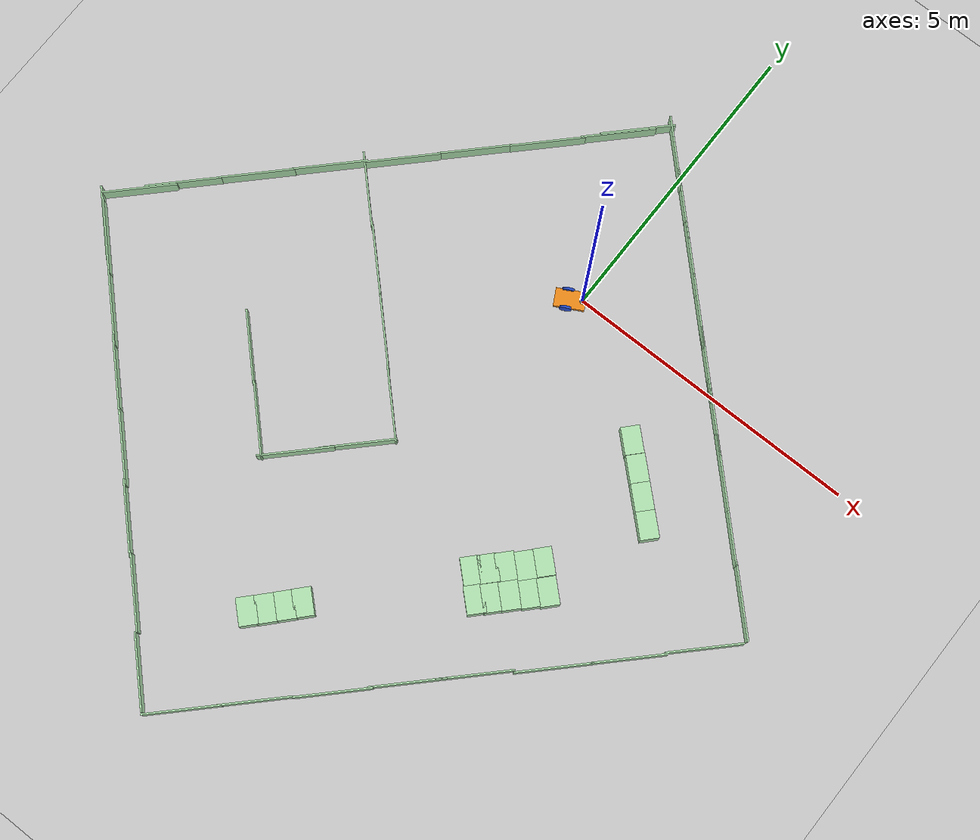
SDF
<sdf version="1.6">
 <world name="default">
  <scene><ambient>0.5 0.5 0.5 1</ambient><background>0.5 0.5 0.5 1</background><shadows>0</shadows></scene>
  <physics name="default_physics" default="0" type="ode">
   <ode>
    <solver>
     <type>quick</type>
     <iters>10</iters>
     <sor>1.3</sor>
     <use_dynamic_moi_rescaling>0</use_dynamic_moi_rescaling>
    </solver>
    <constraints>
     <cfm>0</cfm>
     <erp>0.2</erp>
     <contact_max_correcting_vel>100</contact_max_correcting_vel>
     <contact_surface_layer>0.001</contact_surface_layer>
    </constraints>
   </ode>
   <real_time_update_rate>1000</real_time_update_rate>
   <max_step_size>0.001</max_step_size>
   <real_time_factor>1</real_time_factor>
  </physics>
  <light name="directional_light_1" type="directional">
   <cast_shadows>0</cast_shadows>
   <pose>0 0 30 0.1 0.1 0</pose>
   <diffuse>1 1 1 1</diffuse>
   <specular>0.1 0.1 0.1 1</specular>
   <attenuation><range>300</range></attenuation>
   <direction>0.1 0.1 -1</direction>
  </light>
  <model name="ground_plane">
   <static>1</static>
   <link name="link">
    <collision name="collision">
     <geometry><plane><normal>0 0 1</normal><size>100 100</size></plane></geometry>
     <surface><friction><ode><mu>100</mu><mu2>50</mu2></ode></friction></surface>
    </collision>
    <visual name="visual">
     <cast_shadows>0</cast_shadows>
     <geometry><plane><normal>0 0 1</normal><size>100 100</size></plane></geometry>
     <material>
      <script><uri>file://media/materials/scripts/gazebo.material</uri><name>Gazebo/Grey</name></script>
     </material>
    </visual>
   </link>
  </model>
  <model name="wall_1">
   <static>1</static>
   <link name="wall_1_link">
    <pose>-3.78491 -0.73691 0.15 0 -0 0.785398</pose>
    <collision name="wall_1_collision"><geometry><box><size>0.0254 1.2192 0.3</size></box></geometry></collision>
    <visual name="wall_1_visual">
     <geometry><box><size>0.0254 1.2192 0.3</size></box></geometry>
     <material>
      <ambient>0.7 0.9 0.7 1</ambient>
      <diffuse>0.7 0.9 0.7 1</diffuse>
      <specular>0.1 0.1 0.1 1</specular>
      <emissive>0 0 0 0</emissive>
     </material>
    </visual>
   </link>
  </model>
  <model name="wall_2">
   <pose>-0.080569 0.101811 0 0 -0 0</pose>
   <static>1</static>
   <link name="wall_2_link">
    <pose>-2.87051 -1.65131 0.15 0 -0 0.785398</pose>
    <collision name="wall_2_collision"><geometry><box><size>0.0254 1.2192 0.3</size></box></geometry></collision>
    <visual name="wall_2_visual">
     <geometry><box><size>0.0254 1.2192 0.3</size></box></geometry>
     <material>
      <ambient>0.7 0.9 0.7 1</ambient>
      <diffuse>0.7 0.9 0.7 1</diffuse>
      <specular>0.1 0.1 0.1 1</specular>
      <emissive>0 0 0 0</emissive>
     </material>
    </visual>
   </link>
  </model>
  <model name="wall_3">
   <pose>-4.43995 -1.50936 0 0 -0 0</pose>
   <static>1</static>
   <link name="wall_3_link">
    <pose>-2.26091 -2.26091 0.15 0 -0 0.785398</pose>
    <collision name="wall_3_collision"><geometry><box><size>0.0254 1.2192 0.3</size></box></geometry></collision>
    <visual name="wall_3_visual">
     <geometry><box><size>0.0254 1.2192 0.3</size></box></geometry>
     <material>
      <ambient>0.7 0.9 0.7 1</ambient>
      <diffuse>0.7 0.9 0.7 1</diffuse>
      <specular>0.1 0.1 0.1 1</specular>
      <emissive>0 0 0 0</emissive>
     </material>
    </visual>
   </link>
  </model>
  <model name="wall_4">
   <pose>6.46148 0.567905 0 0 -0 0</pose>
   <static>1</static>
   <link name="wall_4_link">
    <pose>-1.65131 -2.87051 0.15 0 -0 0.785398</pose>
    <collision name="wall_4_collision"><geometry><box><size>0.0254 1.2192 0.3</size></box></geometry></collision>
    <visual name="wall_4_visual">
     <geometry><box><size>0.0254 1.2192 0.3</size></box></geometry>
     <material>
      <ambient>0.7 0.9 0.7 1</ambient>
      <diffuse>0.7 0.9 0.7 1</diffuse>
      <specular>0.1 0.1 0.1 1</specular>
      <emissive>0 0 0 0</emissive>
     </material>
    </visual>
   </link>
  </model>
  <model name="wall_5">
   <pose>-2.81035 2.98922 0 0 -0 0</pose>
   <static>1</static>
   <link name="wall_5_link">
    <pose>-1.6941 -3.7923 0.15 0 0 -0.785398</pose>
    <collision name="wall_5_collision"><geometry><box><size>0.0254 1.2192 0.3</size></box></geometry></collision>
    <visual name="wall_5_visual">
     <geometry><box><size>0.0254 1.2192 0.3</size></box></geometry>
     <material>
      <ambient>0.7 0.9 0.7 1</ambient>
      <diffuse>0.7 0.9 0.7 1</diffuse>
      <specular>0.1 0.1 0.1 1</specular>
      <emissive>0 0 0 0</emissive>
     </material>
    </visual>
   </link>
  </model>
  <model name="wall_6">
   <pose>1.22215 0.957461 0 0 -0 0</pose>
   <static>1</static>
   <link name="wall_6_link">
    <pose>-1.524 1.8288 0.15 0 -0 0.785398</pose>
    <collision name="wall_6_collision"><geometry><box><size>0.0254 1.2192 0.3</size></box></geometry></collision>
    <visual name="wall_6_visual">
     <geometry><box><size>0.0254 1.2192 0.3</size></box></geometry>
     <material>
      <ambient>0.7 0.9 0.7 1</ambient>
      <diffuse>0.7 0.9 0.7 1</diffuse>
      <specular>0.1 0.1 0.1 1</specular>
      <emissive>0 0 0 0</emissive>
     </material>
    </visual>
   </link>
  </model>
  <model name="wall_7">
   <static>1</static>
   <link name="wall_7_link">
    <pose>0.332269 2.16107 0.15 0 -0 0.785398</pose>
    <collision name="wall_7_collision"><geometry><box><size>0.0254 1.2192 0.3</size></box></geometry></collision>
    <visual name="wall_7_visual">
     <geometry><box><size>0.0254 1.2192 0.3</size></box></geometry>
     <material>
      <ambient>0.7 0.9 0.7 1</ambient>
      <diffuse>0.7 0.9 0.7 1</diffuse>
      <specular>0.1 0.1 0.1 1</specular>
      <emissive>0 0 0 0</emissive>
     </material>
    </visual>
   </link>
  </model>
  <model name="wall_8">
   <static>1</static>
   <link name="wall_8_link">
    <pose>0.941869 1.55147 0.15 0 -0 0.785398</pose>
    <collision name="wall_8_collision"><geometry><box><size>0.0254 1.2192 0.3</size></box></geometry></collision>
    <visual name="wall_8_visual">
     <geometry><box><size>0.0254 1.2192 0.3</size></box></geometry>
     <material>
      <ambient>0.7 0.9 0.7 1</ambient>
      <diffuse>0.7 0.9 0.7 1</diffuse>
      <specular>0.1 0.1 0.1 1</specular>
      <emissive>0 0 0 0</emissive>
     </material>
    </visual>
   </link>
  </model>
  <model name="wall_9">
   <static>1</static>
   <link name="wall_9_link">
    <pose>1.55147 0.941869 0.15 0 -0 0.785398</pose>
    <collision name="wall_9_collision"><geometry><box><size>0.0254 1.2192 0.3</size></box></geometry></collision>
    <visual name="wall_9_visual">
     <geometry><box><size>0.0254 1.2192 0.3</size></box></geometry>
     <material>
      <ambient>0.7 0.9 0.7 1</ambient>
      <diffuse>0.7 0.9 0.7 1</diffuse>
      <specular>0.1 0.1 0.1 1</specular>
      <emissive>0 0 0 0</emissive>
     </material>
    </visual>
   </link>
  </model>
  <model name="wall_10">
   <static>1</static>
   <link name="wall_10_link">
    <pose>2.16107 0.332269 0.15 0 -0 0.785398</pose>
    <collision name="wall_10_collision"><geometry><box><size>0.0254 1.2192 0.3</size></box></geometry></collision>
    <visual name="wall_10_visual">
     <geometry><box><size>0.0254 1.2192 0.3</size></box></geometry>
     <material>
      <ambient>0.7 0.9 0.7 1</ambient>
      <diffuse>0.7 0.9 0.7 1</diffuse>
      <specular>0.1 0.1 0.1 1</specular>
      <emissive>0 0 0 0</emissive>
     </material>
    </visual>
   </link>
  </model>
  <model name="wall_11">
   <static>1</static>
   <link name="wall_11_link">
    <pose>2.77067 -0.277331 0.15 0 -0 0.785398</pose>
    <collision name="wall_11_collision"><geometry><box><size>0.0254 1.2192 0.3</size></box></geometry></collision>
    <visual name="wall_11_visual">
     <geometry><box><size>0.0254 1.2192 0.3</size></box></geometry>
     <material>
      <ambient>0.7 0.9 0.7 1</ambient>
      <diffuse>0.7 0.9 0.7 1</diffuse>
      <specular>0.1 0.1 0.1 1</specular>
      <emissive>0 0 0 0</emissive>
     </material>
    </visual>
   </link>
  </model>
  <model name="wall_12">
   <static>1</static>
   <link name="wall_12_link">
    <pose>3.38027 -0.886931 0.15 0 -0 0.785398</pose>
    <collision name="wall_12_collision"><geometry><box><size>0.0254 1.2192 0.3</size></box></geometry></collision>
    <visual name="wall_12_visual">
     <geometry><box><size>0.0254 1.2192 0.3</size></box></geometry>
     <material>
      <ambient>0.7 0.9 0.7 1</ambient>
      <diffuse>0.7 0.9 0.7 1</diffuse>
      <specular>0.1 0.1 0.1 1</specular>
      <emissive>0 0 0 0</emissive>
     </material>
    </visual>
   </link>
  </model>
  <model name="wall_13">
   <static>1</static>
   <link name="wall_13_link">
    <pose>3.98987 -1.49653 0.15 0 -0 0.785398</pose>
    <collision name="wall_13_collision"><geometry><box><size>0.0254 1.2192 0.3</size></box></geometry></collision>
    <visual name="wall_13_visual">
     <geometry><box><size>0.0254 1.2192 0.3</size></box></geometry>
     <material>
      <ambient>0.7 0.9 0.7 1</ambient>
      <diffuse>0.7 0.9 0.7 1</diffuse>
      <specular>0.1 0.1 0.1 1</specular>
      <emissive>0 0 0 0</emissive>
     </material>
    </visual>
   </link>
  </model>
  <model name="wall_14">
   <pose>-0.518637 -3.04896 0 0 -0 0</pose>
   <static>1</static>
   <link name="wall_14_link">
    <pose>-0.312194 -5.78381 0.15 0 0 -0.785398</pose>
    <collision name="wall_14_collision"><geometry><box><size>0.0254 1.2192 0.3</size></box></geometry></collision>
    <visual name="wall_14_visual">
     <geometry><box><size>0.0254 1.2192 0.3</size></box></geometry>
     <material>
      <ambient>0.7 0.9 0.7 1</ambient>
      <diffuse>0.7 0.9 0.7 1</diffuse>
      <specular>0.1 0.1 0.1 1</specular>
      <emissive>0 0 0 0</emissive>
     </material>
    </visual>
   </link>
  </model>
  <model name="wall_15">
   <pose>-0.355367 -2.88213 0 0 -0 0</pose>
   <static>1</static>
   <link name="wall_15_link">
    <pose>0.297406 -5.17421 0.15 0 0 -0.785398</pose>
    <collision name="wall_15_collision"><geometry><box><size>0.0254 1.2192 0.3</size></box></geometry></collision>
    <visual name="wall_15_visual">
     <geometry><box><size>0.0254 1.2192 0.3</size></box></geometry>
     <material>
      <ambient>0.7 0.9 0.7 1</ambient>
      <diffuse>0.7 0.9 0.7 1</diffuse>
      <specular>0.1 0.1 0.1 1</specular>
      <emissive>0 0 0 0</emissive>
     </material>
    </visual>
   </link>
  </model>
  <model name="wall_16">
   <pose>-0.115581 -2.6575 0 0 -0 0</pose>
   <static>1</static>
   <link name="wall_16_link">
    <pose>0.907006 -4.56461 0.15 0 0 -0.785398</pose>
    <collision name="wall_16_collision"><geometry><box><size>0.0254 1.2192 0.3</size></box></geometry></collision>
    <visual name="wall_16_visual">
     <geometry><box><size>0.0254 1.2192 0.3</size></box></geometry>
     <material>
      <ambient>0.7 0.9 0.7 1</ambient>
      <diffuse>0.7 0.9 0.7 1</diffuse>
      <specular>0.1 0.1 0.1 1</specular>
      <emissive>0 0 0 0</emissive>
     </material>
    </visual>
   </link>
  </model>
  <model name="wall_17">
   <pose>0.063621 -2.45752 0 0 -0 0</pose>
   <static>1</static>
   <link name="wall_17_link">
    <pose>1.51661 -3.95501 0.15 0 0 -0.785398</pose>
    <collision name="wall_17_collision"><geometry><box><size>0.0254 1.2192 0.3</size></box></geometry></collision>
    <visual name="wall_17_visual">
     <geometry><box><size>0.0254 1.2192 0.3</size></box></geometry>
     <material>
      <ambient>0.7 0.9 0.7 1</ambient>
      <diffuse>0.7 0.9 0.7 1</diffuse>
      <specular>0.1 0.1 0.1 1</specular>
      <emissive>0 0 0 0</emissive>
     </material>
    </visual>
   </link>
  </model>
  <model name="wall_18">
   <pose>0.183133 -2.3371 0 0 -0 0</pose>
   <static>1</static>
   <link name="wall_18_link">
    <pose>2.12621 -3.34541 0.15 0 0 -0.785398</pose>
    <collision name="wall_18_collision"><geometry><box><size>0.0254 1.2192 0.3</size></box></geometry></collision>
    <visual name="wall_18_visual">
     <geometry><box><size>0.0254 1.2192 0.3</size></box></geometry>
     <material>
      <ambient>0.7 0.9 0.7 1</ambient>
      <diffuse>0.7 0.9 0.7 1</diffuse>
      <specular>0.1 0.1 0.1 1</specular>
      <emissive>0 0 0 0</emissive>
     </material>
    </visual>
   </link>
  </model>
  <model name="wall_19">
   <pose>0.437184 -2.13081 0 0 -0 0</pose>
   <static>1</static>
   <link name="wall_19_link">
    <pose>2.73581 -2.73581 0.15 0 0 -0.785398</pose>
    <collision name="wall_19_collision"><geometry><box><size>0.0254 1.2192 0.3</size></box></geometry></collision>
    <visual name="wall_19_visual">
     <geometry><box><size>0.0254 1.2192 0.3</size></box></geometry>
     <material>
      <ambient>0.7 0.9 0.7 1</ambient>
      <diffuse>0.7 0.9 0.7 1</diffuse>
      <specular>0.1 0.1 0.1 1</specular>
      <emissive>0 0 0 0</emissive>
     </material>
    </visual>
   </link>
  </model>
  <model name="wall_20">
   <pose>0.633815 -1.9284 0 0 -0 0</pose>
   <static>1</static>
   <link name="wall_20_link">
    <pose>3.34541 -2.12621 0.15 0 0 -0.785398</pose>
    <collision name="wall_20_collision"><geometry><box><size>0.0254 1.2192 0.3</size></box></geometry></collision>
    <visual name="wall_20_visual">
     <geometry><box><size>0.0254 1.2192 0.3</size></box></geometry>
     <material>
      <ambient>0.7 0.9 0.7 1</ambient>
      <diffuse>0.7 0.9 0.7 1</diffuse>
      <specular>0.1 0.1 0.1 1</specular>
      <emissive>0 0 0 0</emissive>
     </material>
    </visual>
   </link>
  </model>
  <model name="wall_21">
   <pose>0.834631 -1.69337 0 0 -0 0</pose>
   <static>1</static>
   <link name="wall_21_link">
    <pose>3.95501 -1.51661 0.15 0 0 -0.785398</pose>
    <collision name="wall_21_collision"><geometry><box><size>0.0254 1.2192 0.3</size></box></geometry></collision>
    <visual name="wall_21_visual">
     <geometry><box><size>0.0254 1.2192 0.3</size></box></geometry>
     <material>
      <ambient>0.7 0.9 0.7 1</ambient>
      <diffuse>0.7 0.9 0.7 1</diffuse>
      <specular>0.1 0.1 0.1 1</specular>
      <emissive>0 0 0 0</emissive>
     </material>
    </visual>
   </link>
  </model>
  <model name="wall_22">
   <pose>-0.714344 0.57655 0 0 -0 0</pose>
   <static>1</static>
   <link name="wall_22_link">
    <pose>-0.29582 2.14258 0.15 0 0 -0.785398</pose>
    <collision name="wall_22_collision"><geometry><box><size>0.0254 1.2192 0.3</size></box></geometry></collision>
    <visual name="wall_22_visual">
     <geometry><box><size>0.0254 1.2192 0.3</size></box></geometry>
     <material>
      <ambient>0.7 0.9 0.7 1</ambient>
      <diffuse>0.7 0.9 0.7 1</diffuse>
      <specular>0.1 0.1 0.1 1</specular>
      <emissive>0 0 0 0</emissive>
     </material>
    </visual>
   </link>
  </model>
  <model name="wall_23">
   <pose>-0.619813 0.641247 0 0 -0 0</pose>
   <static>1</static>
   <link name="wall_23_link">
    <pose>-0.60062 1.83778 0.15 0 0 -0.785398</pose>
    <collision name="wall_23_collision"><geometry><box><size>0.0254 1.2192 0.3</size></box></geometry></collision>
    <visual name="wall_23_visual">
     <geometry><box><size>0.0254 1.2192 0.3</size></box></geometry>
     <material>
      <ambient>0.7 0.9 0.7 1</ambient>
      <diffuse>0.7 0.9 0.7 1</diffuse>
      <specular>0.1 0.1 0.1 1</specular>
      <emissive>0 0 0 0</emissive>
     </material>
    </visual>
   </link>
  </model>
  <model name="wall_24">
   <pose>-0.181923 -0.176975 0 0 -0 0</pose>
   <static>1</static>
   <link name="wall_24_link">
    <pose>-1.83778 1.83778 0.15 0 0 -0.785398</pose>
    <collision name="wall_24_collision"><geometry><box><size>0.0254 1.2192 0.3</size></box></geometry></collision>
    <visual name="wall_24_visual">
     <geometry><box><size>0.0254 1.2192 0.3</size></box></geometry>
     <material>
      <ambient>0.7 0.9 0.7 1</ambient>
      <diffuse>0.7 0.9 0.7 1</diffuse>
      <specular>0.1 0.1 0.1 1</specular>
      <emissive>0 0 0 0</emissive>
     </material>
    </visual>
   </link>
  </model>
  <model name="wall_25">
   <pose>-0.092679 -0.080098 0 0 -0 0</pose>
   <static>1</static>
   <link name="wall_25_link">
    <pose>-2.75218 0.92338 0.15 0 0 -0.785398</pose>
    <collision name="wall_25_collision"><geometry><box><size>0.0254 1.2192 0.3</size></box></geometry></collision>
    <visual name="wall_25_visual">
     <geometry><box><size>0.0254 1.2192 0.3</size></box></geometry>
     <material>
      <ambient>0.7 0.9 0.7 1</ambient>
      <diffuse>0.7 0.9 0.7 1</diffuse>
      <specular>0.1 0.1 0.1 1</specular>
      <emissive>0 0 0 0</emissive>
     </material>
    </visual>
   </link>
  </model>
  <model name="wall_26">
   <static>1</static>
   <link name="wall_26_link">
    <pose>-3.66658 0.00898 0.15 0 0 -0.785398</pose>
    <collision name="wall_26_collision"><geometry><box><size>0.0254 1.2192 0.3</size></box></geometry></collision>
    <visual name="wall_26_visual">
     <geometry><box><size>0.0254 1.2192 0.3</size></box></geometry>
     <material>
      <ambient>0.7 0.9 0.7 1</ambient>
      <diffuse>0.7 0.9 0.7 1</diffuse>
      <specular>0.1 0.1 0.1 1</specular>
      <emissive>0 0 0 0</emissive>
     </material>
    </visual>
   </link>
  </model>
  <model name="box_12">
   <pose>1.90039 -2.90778 0 0 -0 0.820246</pose>
   <static>1</static>
   <link name="box_12_link">
    <pose>-0.4572 -0.66675 0.15 0 -0 0</pose>
    <collision name="box_12_collision"><geometry><box><size>0.3048 0.4445 0.3</size></box></geometry></collision>
    <visual name="box_12_visual">
     <geometry><box><size>0.3048 0.4445 0.3</size></box></geometry>
     <material>
      <ambient>0.7 0.9 0.7 1</ambient>
      <diffuse>0.7 0.9 0.7 1</diffuse>
      <specular>0.1 0.1 0.1 1</specular>
      <emissive>0 0 0 0</emissive>
     </material>
    </visual>
   </link>
  </model>
  <gravity>0 0 -9.81</gravity>
  <magnetic_field>6e-06 2.3e-05 -4.2e-05</magnetic_field>
  <atmosphere type="adiabatic"/>
  <audio><device>default</device></audio>
  <spherical_coordinates>
   <surface_model>EARTH_WGS84</surface_model>
   <latitude_deg>0</latitude_deg>
   <longitude_deg>0</longitude_deg>
   <elevation>0</elevation>
   <heading_deg>0</heading_deg>
  </spherical_coordinates>
  <model name="m2wr">
   <link name="link_chassis">
    <inertial>
     <pose>0.025 0 0.091667 0 -0 0</pose>
     <mass>6.00001</mass>
     <inertia>
      <ixx>0.0616261</ixx>
      <ixy>0</ixy>
      <ixz>0.00625021</ixz>
      <iyy>0.147043</iyy>
      <iyz>0</iyz>
      <izz>0.14496</izz>
     </inertia>
    </inertial>
    <collision name="link_chassis_fixed_joint_lump__collision_chassis_collision">
     <geometry><box><size>0.5 0.3 0.07</size></box></geometry>
    </collision>
    <collision name="link_chassis_fixed_joint_lump__caster_front_collision_collision_1">
     <pose>0.35 0 -0.05 0 -0 0</pose>
     <geometry><sphere><radius>0.05</radius></sphere></geometry>
    </collision>
    <collision name="link_chassis_fixed_joint_lump__camera_link_collision_2">
     <pose>0.25 0 0 0 -0 0</pose>
     <geometry><box><size>0.05 0.05 0.05</size></box></geometry>
    </collision>
    <collision name="link_chassis_fixed_joint_lump__sensor_laser_collision_3">
     <pose>0.15 0 0.05 0 -0 0</pose>
     <geometry><cylinder><length>0.1</length><radius>0.05</radius></cylinder></geometry>
    </collision>
    <visual name="link_chassis_visual">
     <geometry><box><size>0.5 0.3 0.07</size></box></geometry>
     <material>
      <script><name>Gazebo/Orange</name><uri>file://media/materials/scripts/gazebo.material</uri></script>
     </material>
    </visual>
    <visual name="link_chassis_fixed_joint_lump__caster_front_visual_visual_1">
     <pose>0.2 0 -0.05 0 -0 0</pose>
     <geometry><sphere><radius>0.05</radius></sphere></geometry>
    </visual>
    <visual name="link_chassis_fixed_joint_lump__camera_link_visual_2">
     <pose>0.25 0 0 0 -0 0</pose>
     <geometry><box><size>0.05 0.05 0.05</size></box></geometry>
     <material><script><uri>__default__</uri><name>__default__</name></script></material>
    </visual>
    <visual name="link_chassis_fixed_joint_lump__sensor_laser_visual_3">
     <pose>0.15 0 0.05 0 -0 0</pose>
     <geometry><cylinder><length>0.1</length><radius>0.05</radius></cylinder></geometry>
     <material><script><uri>__default__</uri><name>__default__</name></script></material>
    </visual>
    <sensor name="camera1" type="depth">
     <update_rate>20</update_rate>
     <camera name="__default__">
      <horizontal_fov>1.0472</horizontal_fov>
      <image><width>640</width><height>480</height><format>R8G8B8</format></image>
      <clip><near>0.05</near><far>3</far></clip>
     </camera>
     <plugin name="camera_controller" filename="libgazebo_ros_openni_kinect.so">
      <baseline>0.2</baseline>
      <alwaysOn>1</alwaysOn>
      <updateRate>1.0</updateRate>
      <cameraName>camera1_ir</cameraName>
      <imageTopicName>/camera1/color/image_raw</imageTopicName>
      <cameraInfoTopicName>/camera1/color/camera_info</cameraInfoTopicName>
      <depthImageTopicName>/camera1/depth/image_raw</depthImageTopicName>
      <depthImageInfoTopicName>/camera1/depth/camera_info</depthImageInfoTopicName>
      <pointCloudTopicName>/camera1/depth/points</pointCloudTopicName>
      <frameName>camera_link</frameName>
      <pointCloudCutoff>0.5</pointCloudCutoff>
      <pointCloudCutoffMax>3.0</pointCloudCutoffMax>
      <distortionK1>0.00000001</distortionK1>
      <distortionK2>0.00000001</distortionK2>
      <distortionK3>0.00000001</distortionK3>
      <distortionT1>0.00000001</distortionT1>
      <distortionT2>0.00000001</distortionT2>
      <CxPrime>0</CxPrime>
      <Cx>0</Cx>
      <Cy>0</Cy>
      <focalLength>0</focalLength>
      <hackBaseline>0</hackBaseline>
      <robotNamespace>/</robotNamespace>
     </plugin>
     <pose>0.25 0 0 0 -0 0</pose>
    </sensor>
    <sensor name="head_hokuyo_sensor" type="ray">
     <visualize>0</visualize>
     <update_rate>20</update_rate>
     <ray>
      <scan>
       <horizontal>
        <samples>720</samples>
        <resolution>1</resolution>
        <min_angle>-3.14</min_angle>
        <max_angle>3.14</max_angle>
       </horizontal>
       <vertical><samples>1</samples><min_angle>0</min_angle><max_angle>0</max_angle></vertical>
      </scan>
      <range><min>0.1</min><max>10</max><resolution>0.01</resolution></range>
      <noise><type>gaussian</type><mean>0</mean><stddev>0.01</stddev></noise>
     </ray>
     <plugin name="gazebo_ros_head_hokuyo_controller" filename="libgazebo_ros_laser.so">
      <topicName>/m2wr/laser/scan</topicName>
      <frameName>sensor_laser</frameName>
      <robotNamespace>/</robotNamespace>
     </plugin>
     <pose>0.15 0 0.05 0 -0 0</pose>
    </sensor>
   </link>
   <link name="link_left_wheel">
    <pose>-0.05 -0.15 0 0 -0 0</pose>
    <inertial>
     <pose>0 0 0 -0 1.5707 1.5707</pose>
     <mass>0.2</mass>
     <inertia>
      <ixx>0.000526667</ixx>
      <ixy>0</ixy>
      <ixz>0</ixz>
      <iyy>0.000526667</iyy>
      <iyz>0</iyz>
      <izz>0.001</izz>
     </inertia>
    </inertial>
    <collision name="link_left_wheel_collision_collision">
     <pose>0 0 0 3.14159 1.57079 -1.57089</pose>
     <geometry><cylinder><length>0.04</length><radius>0.1</radius></cylinder></geometry>
    </collision>
    <visual name="link_left_wheel_visual_visual">
     <pose>0 0 0 3.14159 1.57079 -1.57089</pose>
     <geometry><cylinder><length>0.04</length><radius>0.1</radius></cylinder></geometry>
     <material>
      <script><name>Gazebo/Blue</name><uri>file://media/materials/scripts/gazebo.material</uri></script>
     </material>
    </visual>
   </link>
   <joint name="joint_left_wheel" type="revolute">
    <child>link_left_wheel</child>
    <parent>link_chassis</parent>
    <axis>
     <xyz>0 1 0</xyz>
     <limit><lower>-1e+16</lower><upper>1e+16</upper></limit>
     <dynamics><spring_reference>0</spring_reference><spring_stiffness>0</spring_stiffness></dynamics>
     <use_parent_model_frame>1</use_parent_model_frame>
    </axis>
   </joint>
   <link name="link_right_wheel">
    <pose>-0.05 0.15 0 0 -0 0</pose>
    <inertial>
     <pose>0 0 0 -0 1.5707 1.5707</pose>
     <mass>0.2</mass>
     <inertia>
      <ixx>0.000526667</ixx>
      <ixy>0</ixy>
      <ixz>0</ixz>
      <iyy>0.000526667</iyy>
      <iyz>0</iyz>
      <izz>0.001</izz>
     </inertia>
    </inertial>
    <collision name="link_right_wheel_collision_collision">
     <pose>0 0 0 3.14159 1.57079 -1.57089</pose>
     <geometry><cylinder><length>0.04</length><radius>0.1</radius></cylinder></geometry>
    </collision>
    <visual name="link_right_wheel_visual_visual">
     <pose>0 0 0 3.14159 1.57079 -1.57089</pose>
     <geometry><cylinder><length>0.04</length><radius>0.1</radius></cylinder></geometry>
     <material>
      <script><name>Gazebo/Blue</name><uri>file://media/materials/scripts/gazebo.material</uri></script>
     </material>
    </visual>
   </link>
   <joint name="joint_right_wheel" type="revolute">
    <child>link_right_wheel</child>
    <parent>link_chassis</parent>
    <axis>
     <xyz>0 1 0</xyz>
     <limit><lower>-1e+16</lower><upper>1e+16</upper></limit>
     <dynamics><spring_reference>0</spring_reference><spring_stiffness>0</spring_stiffness></dynamics>
     <use_parent_model_frame>1</use_parent_model_frame>
    </axis>
   </joint>
   <static>0</static>
   <plugin name="differential_drive_controller" filename="libgazebo_ros_diff_drive.so">
    <alwaysOn>1</alwaysOn>
    <updateRate>20</updateRate>
    <leftJoint>joint_left_wheel</leftJoint>
    <rightJoint>joint_right_wheel</rightJoint>
    <wheelSeparation>0.4</wheelSeparation>
    <wheelDiameter>0.2</wheelDiameter>
    <torque>0.1</torque>
    <commandTopic>cmd_vel</commandTopic>
    <odometryTopic>odom</odometryTopic>
    <odometryFrame>odom</odometryFrame>
    <robotBaseFrame>link_chassis</robotBaseFrame>
    <robotNamespace>/</robotNamespace>
   </plugin>
   <pose>-0.163121 -0.138667 0.099986 -3.14156 -0.00012 0.492838</pose>
  </model>
  <model name="wall_3_clone">
   <static>1</static>
   <link name="wall_3_link">
    <pose>-2.26091 -2.26091 0.15 0 -0 0.785398</pose>
    <collision name="wall_3_collision"><geometry><box><size>0.0254 1.2192 0.3</size></box></geometry></collision>
    <visual name="wall_3_visual">
     <geometry><box><size>0.0254 1.2192 0.3</size></box></geometry>
     <material>
      <ambient>0.7 0.9 0.7 1</ambient>
      <diffuse>0.7 0.9 0.7 1</diffuse>
      <specular>0.1 0.1 0.1 1</specular>
      <emissive>0 0 0 0</emissive>
     </material>
    </visual>
   </link>
   <pose>0.557286 -6.54287 0 0 -0 0</pose>
  </model>
  <model name="wall_3_clone_0">
   <static>1</static>
   <link name="wall_3_link">
    <pose>-2.26091 -2.26091 0.15 0 -0 0.785398</pose>
    <collision name="wall_3_collision"><geometry><box><size>0.0254 1.2192 0.3</size></box></geometry></collision>
    <visual name="wall_3_visual">
     <geometry><box><size>0.0254 1.2192 0.3</size></box></geometry>
     <material>
      <ambient>0.7 0.9 0.7 1</ambient>
      <diffuse>0.7 0.9 0.7 1</diffuse>
      <specular>0.1 0.1 0.1 1</specular>
      <emissive>0 0 0 0</emissive>
     </material>
    </visual>
   </link>
   <pose>-0.267546 -5.67507 0 0 -0 0</pose>
  </model>
  <model name="wall_3_clone_1">
   <static>1</static>
   <link name="wall_3_link">
    <pose>-2.26091 -2.26091 0.15 0 -0 0.785398</pose>
    <collision name="wall_3_collision"><geometry><box><size>0.0254 1.2192 0.3</size></box></geometry></collision>
    <visual name="wall_3_visual">
     <geometry><box><size>0.0254 1.2192 0.3</size></box></geometry>
     <material>
      <ambient>0.7 0.9 0.7 1</ambient>
      <diffuse>0.7 0.9 0.7 1</diffuse>
      <specular>0.1 0.1 0.1 1</specular>
      <emissive>0 0 0 0</emissive>
     </material>
    </visual>
   </link>
   <pose>-1.09779 -4.86906 0 0 -0 0</pose>
  </model>
  <model name="wall_3_clone_2">
   <static>1</static>
   <link name="wall_3_link">
    <pose>-2.26091 -2.26091 0.15 0 -0 0.785398</pose>
    <collision name="wall_3_collision"><geometry><box><size>0.0254 1.2192 0.3</size></box></geometry></collision>
    <visual name="wall_3_visual">
     <geometry><box><size>0.0254 1.2192 0.3</size></box></geometry>
     <material>
      <ambient>0.7 0.9 0.7 1</ambient>
      <diffuse>0.7 0.9 0.7 1</diffuse>
      <specular>0.1 0.1 0.1 1</specular>
      <emissive>0 0 0 0</emissive>
     </material>
    </visual>
   </link>
   <pose>-1.87185 -4.071 0 0 -0 0</pose>
  </model>
  <model name="wall_3_clone_3">
   <static>1</static>
   <link name="wall_3_link">
    <pose>-2.26091 -2.26091 0.15 0 -0 0.785398</pose>
    <collision name="wall_3_collision"><geometry><box><size>0.0254 1.2192 0.3</size></box></geometry></collision>
    <visual name="wall_3_visual">
     <geometry><box><size>0.0254 1.2192 0.3</size></box></geometry>
     <material>
      <ambient>0.7 0.9 0.7 1</ambient>
      <diffuse>0.7 0.9 0.7 1</diffuse>
      <specular>0.1 0.1 0.1 1</specular>
      <emissive>0 0 0 0</emissive>
     </material>
    </visual>
   </link>
   <pose>-2.71657 -3.23397 0 0 -0 0</pose>
  </model>
  <model name="wall_3_clone_4">
   <static>1</static>
   <link name="wall_3_link">
    <pose>-2.26091 -2.26091 0.15 0 -0 0.785398</pose>
    <collision name="wall_3_collision"><geometry><box><size>0.0254 1.2192 0.3</size></box></geometry></collision>
    <visual name="wall_3_visual">
     <geometry><box><size>0.0254 1.2192 0.3</size></box></geometry>
     <material>
      <ambient>0.7 0.9 0.7 1</ambient>
      <diffuse>0.7 0.9 0.7 1</diffuse>
      <specular>0.1 0.1 0.1 1</specular>
      <emissive>0 0 0 0</emissive>
     </material>
    </visual>
   </link>
   <pose>-3.4453 -2.4894 0 0 -0 0</pose>
  </model>
  <model name="wall_3_clone_5">
   <static>1</static>
   <link name="wall_3_link">
    <pose>-2.26091 -2.26091 0.15 0 -0 0.785398</pose>
    <collision name="wall_3_collision"><geometry><box><size>0.0254 1.2192 0.3</size></box></geometry></collision>
    <visual name="wall_3_visual">
     <geometry><box><size>0.0254 1.2192 0.3</size></box></geometry>
     <material>
      <ambient>0.7 0.9 0.7 1</ambient>
      <diffuse>0.7 0.9 0.7 1</diffuse>
      <specular>0.1 0.1 0.1 1</specular>
      <emissive>0 0 0 0</emissive>
     </material>
    </visual>
   </link>
   <pose>-4.2772 -1.65696 0 0 -0 0</pose>
  </model>
  <model name="wall_5_clone">
   <static>1</static>
   <link name="wall_5_link">
    <pose>-1.6941 -3.7923 0.15 0 0 -0.785398</pose>
    <collision name="wall_5_collision"><geometry><box><size>0.0254 1.2192 0.3</size></box></geometry></collision>
    <visual name="wall_5_visual">
     <geometry><box><size>0.0254 1.2192 0.3</size></box></geometry>
     <material>
      <ambient>0.7 0.9 0.7 1</ambient>
      <diffuse>0.7 0.9 0.7 1</diffuse>
      <specular>0.1 0.1 0.1 1</specular>
      <emissive>0 0 0 0</emissive>
     </material>
    </visual>
   </link>
   <pose>-3.63486 2.15487 0 0 -0 0</pose>
  </model>
  <model name="wall_5_clone_0">
   <static>1</static>
   <link name="wall_5_link">
    <pose>-1.6941 -3.7923 0.15 0 0 -0.785398</pose>
    <collision name="wall_5_collision"><geometry><box><size>0.0254 1.2192 0.3</size></box></geometry></collision>
    <visual name="wall_5_visual">
     <geometry><box><size>0.0254 1.2192 0.3</size></box></geometry>
     <material>
      <ambient>0.7 0.9 0.7 1</ambient>
      <diffuse>0.7 0.9 0.7 1</diffuse>
      <specular>0.1 0.1 0.1 1</specular>
      <emissive>0 0 0 0</emissive>
     </material>
    </visual>
   </link>
   <pose>-4.46231 1.32072 0 0 -0 0</pose>
  </model>
  <model name="wall_5_clone_1">
   <static>1</static>
   <link name="wall_5_link">
    <pose>-1.6941 -3.7923 0.15 0 0 -0.785398</pose>
    <collision name="wall_5_collision"><geometry><box><size>0.0254 1.2192 0.3</size></box></geometry></collision>
    <visual name="wall_5_visual">
     <geometry><box><size>0.0254 1.2192 0.3</size></box></geometry>
     <material>
      <ambient>0.7 0.9 0.7 1</ambient>
      <diffuse>0.7 0.9 0.7 1</diffuse>
      <specular>0.1 0.1 0.1 1</specular>
      <emissive>0 0 0 0</emissive>
     </material>
    </visual>
   </link>
   <pose>-4.94425 0.799009 0 0 -0 0</pose>
  </model>
  <model name="wall_2_clone">
   <static>1</static>
   <link name="wall_2_link">
    <pose>-2.87051 -1.65131 0.15 0 -0 0.785398</pose>
    <collision name="wall_2_collision"><geometry><box><size>0.0254 1.2192 0.3</size></box></geometry></collision>
    <visual name="wall_2_visual">
     <geometry><box><size>0.0254 1.2192 0.3</size></box></geometry>
     <material>
      <ambient>0.7 0.9 0.7 1</ambient>
      <diffuse>0.7 0.9 0.7 1</diffuse>
      <specular>0.1 0.1 0.1 1</specular>
      <emissive>0 0 0 0</emissive>
     </material>
    </visual>
   </link>
   <pose>0.75636 -0.737298 0 0 -0 0</pose>
  </model>
  <model name="wall_2_clone_0">
   <static>1</static>
   <link name="wall_2_link">
    <pose>-2.87051 -1.65131 0.15 0 -0 0.785398</pose>
    <collision name="wall_2_collision"><geometry><box><size>0.0254 1.2192 0.3</size></box></geometry></collision>
    <visual name="wall_2_visual">
     <geometry><box><size>0.0254 1.2192 0.3</size></box></geometry>
     <material>
      <ambient>0.7 0.9 0.7 1</ambient>
      <diffuse>0.7 0.9 0.7 1</diffuse>
      <specular>0.1 0.1 0.1 1</specular>
      <emissive>0 0 0 0</emissive>
     </material>
    </visual>
   </link>
   <pose>1.5701 -1.5613 0 0 -0 0</pose>
  </model>
  <model name="wall_25_clone">
   <static>1</static>
   <link name="wall_25_link">
    <pose>-2.75218 0.92338 0.15 0 0 -0.785398</pose>
    <collision name="wall_25_collision"><geometry><box><size>0.0254 1.2192 0.3</size></box></geometry></collision>
    <visual name="wall_25_visual">
     <geometry><box><size>0.0254 1.2192 0.3</size></box></geometry>
     <material>
      <ambient>0.7 0.9 0.7 1</ambient>
      <diffuse>0.7 0.9 0.7 1</diffuse>
      <specular>0.1 0.1 0.1 1</specular>
      <emissive>0 0 0 0</emissive>
     </material>
    </visual>
   </link>
   <pose>1.44724 -4.95229 0 0 -0 0</pose>
  </model>
  <model name="wall_25_clone_0">
   <static>1</static>
   <link name="wall_25_link">
    <pose>-2.75218 0.92338 0.15 0 0 -0.785398</pose>
    <collision name="wall_25_collision"><geometry><box><size>0.0254 1.2192 0.3</size></box></geometry></collision>
    <visual name="wall_25_visual">
     <geometry><box><size>0.0254 1.2192 0.3</size></box></geometry>
     <material>
      <ambient>0.7 0.9 0.7 1</ambient>
      <diffuse>0.7 0.9 0.7 1</diffuse>
      <specular>0.1 0.1 0.1 1</specular>
      <emissive>0 0 0 0</emissive>
     </material>
    </visual>
   </link>
   <pose>0.76237 -5.64894 0 0 -0 0</pose>
  </model>
  <model name="wall_2_clone_clone">
   <static>1</static>
   <link name="wall_2_link">
    <pose>-2.87051 -1.65131 0.15 0 -0 0.785398</pose>
    <collision name="wall_2_collision"><geometry><box><size>0.0254 1.2192 0.3</size></box></geometry></collision>
    <visual name="wall_2_visual">
     <geometry><box><size>0.0254 1.2192 0.3</size></box></geometry>
     <material>
      <ambient>0.7 0.9 0.7 1</ambient>
      <diffuse>0.7 0.9 0.7 1</diffuse>
      <specular>0.1 0.1 0.1 1</specular>
      <emissive>0 0 0 0</emissive>
     </material>
    </visual>
   </link>
   <pose>0.092473 -3.0421 0 0 -0 0</pose>
  </model>
  <model name="wall_2_clone_clone_0">
   <static>1</static>
   <link name="wall_2_link">
    <pose>-2.87051 -1.65131 0.15 0 -0 0.785398</pose>
    <collision name="wall_2_collision"><geometry><box><size>0.0254 1.2192 0.3</size></box></geometry></collision>
    <visual name="wall_2_visual">
     <geometry><box><size>0.0254 1.2192 0.3</size></box></geometry>
     <material>
      <ambient>0.7 0.9 0.7 1</ambient>
      <diffuse>0.7 0.9 0.7 1</diffuse>
      <specular>0.1 0.1 0.1 1</specular>
      <emissive>0 0 0 0</emissive>
     </material>
    </visual>
   </link>
   <pose>-0.729148 -2.23582 0 0 -0 0</pose>
  </model>
  <model name="box_12_clone">
   <static>1</static>
   <link name="box_12_link">
    <pose>-0.4572 -0.66675 0.15 0 -0 0</pose>
    <collision name="box_12_collision"><geometry><box><size>0.3048 0.4445 0.3</size></box></geometry></collision>
    <visual name="box_12_visual">
     <geometry><box><size>0.3048 0.4445 0.3</size></box></geometry>
     <material>
      <ambient>0.7 0.9 0.7 1</ambient>
      <diffuse>0.7 0.9 0.7 1</diffuse>
      <specular>0.1 0.1 0.1 1</specular>
      <emissive>0 0 0 0</emissive>
     </material>
    </visual>
   </link>
   <pose>2.22855 -3.22262 0 0 -0 0.820246</pose>
  </model>
  <model name="box_12_clone_1">
   <static>1</static>
   <link name="box_12_link">
    <pose>-0.4572 -0.66675 0.15 0 -0 0</pose>
    <collision name="box_12_collision"><geometry><box><size>0.3048 0.4445 0.3</size></box></geometry></collision>
    <visual name="box_12_visual">
     <geometry><box><size>0.3048 0.4445 0.3</size></box></geometry>
     <material>
      <ambient>0.7 0.9 0.7 1</ambient>
      <diffuse>0.7 0.9 0.7 1</diffuse>
      <specular>0.1 0.1 0.1 1</specular>
      <emissive>0 0 0 0</emissive>
     </material>
    </visual>
   </link>
   <pose>1.70548 -3.12444 0 0 -0 0.820246</pose>
  </model>
  <model name="box_12_clone_2">
   <static>1</static>
   <link name="box_12_link">
    <pose>-0.4572 -0.66675 0.15 0 -0 0</pose>
    <collision name="box_12_collision"><geometry><box><size>0.3048 0.4445 0.3</size></box></geometry></collision>
    <visual name="box_12_visual">
     <geometry><box><size>0.3048 0.4445 0.3</size></box></geometry>
     <material>
      <ambient>0.7 0.9 0.7 1</ambient>
      <diffuse>0.7 0.9 0.7 1</diffuse>
      <specular>0.1 0.1 0.1 1</specular>
      <emissive>0 0 0 0</emissive>
     </material>
    </visual>
   </link>
   <pose>2.01907 -3.42206 0 0 -0 0.820246</pose>
  </model>
  <model name="box_12_clone_3">
   <static>1</static>
   <link name="box_12_link">
    <pose>-0.4572 -0.66675 0.15 0 -0 0</pose>
    <collision name="box_12_collision"><geometry><box><size>0.3048 0.4445 0.3</size></box></geometry></collision>
    <visual name="box_12_visual">
     <geometry><box><size>0.3048 0.4445 0.3</size></box></geometry>
     <material>
      <ambient>0.7 0.9 0.7 1</ambient>
      <diffuse>0.7 0.9 0.7 1</diffuse>
      <specular>0.1 0.1 0.1 1</specular>
      <emissive>0 0 0 0</emissive>
     </material>
    </visual>
   </link>
   <pose>1.8047 -3.63172 0 0 -0 0.820246</pose>
  </model>
  <model name="box_12_clone_4">
   <static>1</static>
   <link name="box_12_link">
    <pose>-0.4572 -0.66675 0.15 0 -0 0</pose>
    <collision name="box_12_collision"><geometry><box><size>0.3048 0.4445 0.3</size></box></geometry></collision>
    <visual name="box_12_visual">
     <geometry><box><size>0.3048 0.4445 0.3</size></box></geometry>
     <material>
      <ambient>0.7 0.9 0.7 1</ambient>
      <diffuse>0.7 0.9 0.7 1</diffuse>
      <specular>0.1 0.1 0.1 1</specular>
      <emissive>0 0 0 0</emissive>
     </material>
    </visual>
   </link>
   <pose>1.48561 -3.32314 0 0 -0 0.820246</pose>
  </model>
  <model name="box_12_clone_5">
   <static>1</static>
   <link name="box_12_link">
    <pose>-0.4572 -0.66675 0.15 0 -0 0</pose>
    <collision name="box_12_collision"><geometry><box><size>0.3048 0.4445 0.3</size></box></geometry></collision>
    <visual name="box_12_visual">
     <geometry><box><size>0.3048 0.4445 0.3</size></box></geometry>
     <material>
      <ambient>0.7 0.9 0.7 1</ambient>
      <diffuse>0.7 0.9 0.7 1</diffuse>
      <specular>0.1 0.1 0.1 1</specular>
      <emissive>0 0 0 0</emissive>
     </material>
    </visual>
   </link>
   <pose>1.29853 -3.50996 0 0 -0 0.820246</pose>
  </model>
  <model name="box_12_clone_6">
   <static>1</static>
   <link name="box_12_link">
    <pose>-0.4572 -0.66675 0.15 0 -0 0</pose>
    <collision name="box_12_collision"><geometry><box><size>0.3048 0.4445 0.3</size></box></geometry></collision>
    <visual name="box_12_visual">
     <geometry><box><size>0.3048 0.4445 0.3</size></box></geometry>
     <material>
      <ambient>0.7 0.9 0.7 1</ambient>
      <diffuse>0.7 0.9 0.7 1</diffuse>
      <specular>0.1 0.1 0.1 1</specular>
      <emissive>0 0 0 0</emissive>
     </material>
    </visual>
   </link>
   <pose>1.61212 -3.82932 0 0 -0 0.820246</pose>
  </model>
  <model name="box_12_clone_7">
   <static>1</static>
   <link name="box_12_link">
    <pose>-0.4572 -0.66675 0.15 0 -0 0</pose>
    <collision name="box_12_collision"><geometry><box><size>0.3048 0.4445 0.3</size></box></geometry></collision>
    <visual name="box_12_visual">
     <geometry><box><size>0.3048 0.4445 0.3</size></box></geometry>
     <material>
      <ambient>0.7 0.9 0.7 1</ambient>
      <diffuse>0.7 0.9 0.7 1</diffuse>
      <specular>0.1 0.1 0.1 1</specular>
      <emissive>0 0 0 0</emissive>
     </material>
    </visual>
   </link>
   <pose>1.11614 -3.6978 0 0 -0 0.820246</pose>
  </model>
  <model name="box_12_clone_8">
   <static>1</static>
   <link name="box_12_link">
    <pose>-0.4572 -0.66675 0.15 0 -0 0</pose>
    <collision name="box_12_collision"><geometry><box><size>0.3048 0.4445 0.3</size></box></geometry></collision>
    <visual name="box_12_visual">
     <geometry><box><size>0.3048 0.4445 0.3</size></box></geometry>
     <material>
      <ambient>0.7 0.9 0.7 1</ambient>
      <diffuse>0.7 0.9 0.7 1</diffuse>
      <specular>0.1 0.1 0.1 1</specular>
      <emissive>0 0 0 0</emissive>
     </material>
    </visual>
   </link>
   <pose>1.42785 -4.00913 0 0 -0 0.820246</pose>
  </model>
  <model name="box_12_clone_0">
   <static>1</static>
   <link name="box_12_link">
    <pose>-0.4572 -0.66675 0.15 0 -0 0</pose>
    <collision name="box_12_collision"><geometry><box><size>0.3048 0.4445 0.3</size></box></geometry></collision>
    <visual name="box_12_visual">
     <geometry><box><size>0.3048 0.4445 0.3</size></box></geometry>
     <material>
      <ambient>0.7 0.9 0.7 1</ambient>
      <diffuse>0.7 0.9 0.7 1</diffuse>
      <specular>0.1 0.1 0.1 1</specular>
      <emissive>0 0 0 0</emissive>
     </material>
    </visual>
   </link>
   <pose>-0.983623 -6.09052 0 0 -0 0.820246</pose>
  </model>
  <model name="box_12_clone_9">
   <static>1</static>
   <link name="box_12_link">
    <pose>-0.4572 -0.66675 0.15 0 -0 0</pose>
    <collision name="box_12_collision"><geometry><box><size>0.3048 0.4445 0.3</size></box></geometry></collision>
    <visual name="box_12_visual">
     <geometry><box><size>0.3048 0.4445 0.3</size></box></geometry>
     <material>
      <ambient>0.7 0.9 0.7 1</ambient>
      <diffuse>0.7 0.9 0.7 1</diffuse>
      <specular>0.1 0.1 0.1 1</specular>
      <emissive>0 0 0 0</emissive>
     </material>
    </visual>
   </link>
   <pose>-1.176 -6.29273 0 0 -0 0.820246</pose>
  </model>
  <model name="box_12_clone_10">
   <static>1</static>
   <link name="box_12_link">
    <pose>-0.4572 -0.66675 0.15 0 -0 0</pose>
    <collision name="box_12_collision"><geometry><box><size>0.3048 0.4445 0.3</size></box></geometry></collision>
    <visual name="box_12_visual">
     <geometry><box><size>0.3048 0.4445 0.3</size></box></geometry>
     <material>
      <ambient>0.7 0.9 0.7 1</ambient>
      <diffuse>0.7 0.9 0.7 1</diffuse>
      <specular>0.1 0.1 0.1 1</specular>
      <emissive>0 0 0 0</emissive>
     </material>
    </visual>
   </link>
   <pose>-0.779599 -5.86868 0 0 -0 0.820246</pose>
  </model>
  <model name="box_12_clone_11">
   <static>1</static>
   <link name="box_12_link">
    <pose>-0.4572 -0.66675 0.15 0 -0 0</pose>
    <collision name="box_12_collision"><geometry><box><size>0.3048 0.4445 0.3</size></box></geometry></collision>
    <visual name="box_12_visual">
     <geometry><box><size>0.3048 0.4445 0.3</size></box></geometry>
     <material>
      <ambient>0.7 0.9 0.7 1</ambient>
      <diffuse>0.7 0.9 0.7 1</diffuse>
      <specular>0.1 0.1 0.1 1</specular>
      <emissive>0 0 0 0</emissive>
     </material>
    </visual>
   </link>
   <pose>-0.594547 -5.66406 0 0 -0 0.820246</pose>
  </model>
  <model name="box_12_clone_12">
   <static>1</static>
   <link name="box_12_link">
    <pose>-0.4572 -0.66675 0.15 0 -0 0</pose>
    <collision name="box_12_collision"><geometry><box><size>0.3048 0.4445 0.3</size></box></geometry></collision>
    <visual name="box_12_visual">
     <geometry><box><size>0.3048 0.4445 0.3</size></box></geometry>
     <material>
      <ambient>0.7 0.9 0.7 1</ambient>
      <diffuse>0.7 0.9 0.7 1</diffuse>
      <specular>0.1 0.1 0.1 1</specular>
      <emissive>0 0 0 0</emissive>
     </material>
    </visual>
   </link>
   <pose>1.81255 -0.568617 0 0 -0 0.820246</pose>
  </model>
  <model name="box_12_clone_13">
   <static>1</static>
   <link name="box_12_link">
    <pose>-0.4572 -0.66675 0.15 0 -0 0</pose>
    <collision name="box_12_collision"><geometry><box><size>0.3048 0.4445 0.3</size></box></geometry></collision>
    <visual name="box_12_visual">
     <geometry><box><size>0.3048 0.4445 0.3</size></box></geometry>
     <material>
      <ambient>0.7 0.9 0.7 1</ambient>
      <diffuse>0.7 0.9 0.7 1</diffuse>
      <specular>0.1 0.1 0.1 1</specular>
      <emissive>0 0 0 0</emissive>
     </material>
    </visual>
   </link>
   <pose>2.14475 -0.869748 0 0 -0 0.820246</pose>
  </model>
  <model name="box_12_clone_14">
   <static>1</static>
   <link name="box_12_link">
    <pose>-0.4572 -0.66675 0.15 0 -0 0</pose>
    <collision name="box_12_collision"><geometry><box><size>0.3048 0.4445 0.3</size></box></geometry></collision>
    <visual name="box_12_visual">
     <geometry><box><size>0.3048 0.4445 0.3</size></box></geometry>
     <material>
      <ambient>0.7 0.9 0.7 1</ambient>
      <diffuse>0.7 0.9 0.7 1</diffuse>
      <specular>0.1 0.1 0.1 1</specular>
      <emissive>0 0 0 0</emissive>
     </material>
    </visual>
   </link>
   <pose>2.47067 -1.17317 0 0 -0 0.820246</pose>
  </model>
  <model name="box_12_clone_15">
   <static>1</static>
   <link name="box_12_link">
    <pose>-0.4572 -0.66675 0.15 0 -0 0</pose>
    <collision name="box_12_collision"><geometry><box><size>0.3048 0.4445 0.3</size></box></geometry></collision>
    <visual name="box_12_visual">
     <geometry><box><size>0.3048 0.4445 0.3</size></box></geometry>
     <material>
      <ambient>0.7 0.9 0.7 1</ambient>
      <diffuse>0.7 0.9 0.7 1</diffuse>
      <specular>0.1 0.1 0.1 1</specular>
      <emissive>0 0 0 0</emissive>
     </material>
    </visual>
   </link>
   <pose>2.79649 -1.47565 0 0 -0 0.820246</pose>
  </model>
 </world>
</sdf>
